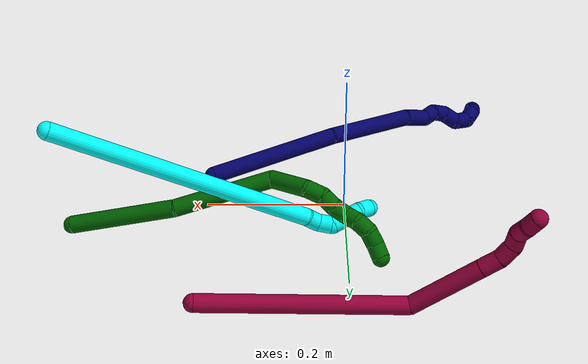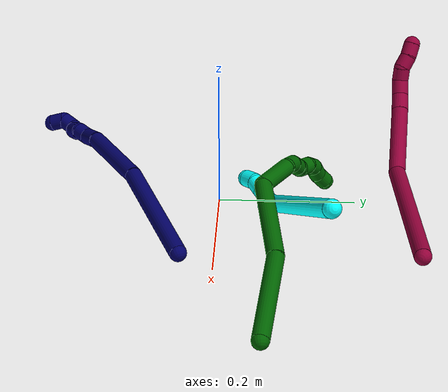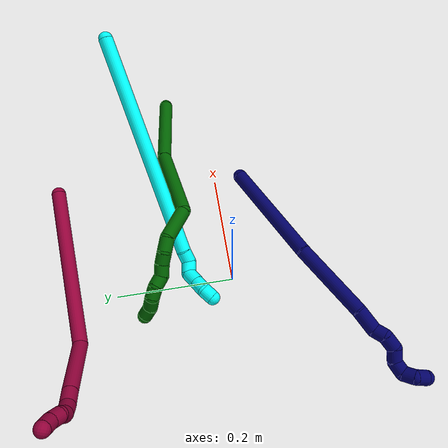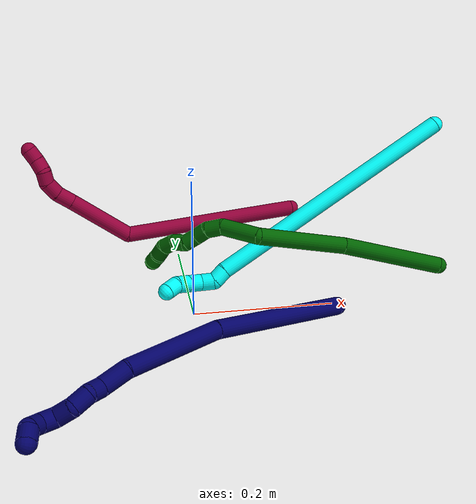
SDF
<sdf version="1.7">
 <world name="default">
  <model name="3">
   <static>0</static>
   <link name="3">
    <collision name="collision-cylinder-e_1_1_4">
     <pose>-0.028551 -0.020709 -0.193059 3.03473 -0.145999 -1.87874</pose>
     <geometry><cylinder><radius>0.0125</radius><length>0.392508</length></cylinder></geometry>
     <surface>
      <friction><ode><mu>1.16</mu><mu2>1.16</mu2><slip1>0</slip1><slip2>0</slip2></ode></friction>
      <contact><ode><kp>1e+06</kp><kd>1</kd><max_vel>0</max_vel><min_depth>0.001</min_depth></ode></contact>
     </surface>
    </collision>
    <visual name="visual-cylinder-e_1_1_4">
     <pose>-0.028551 -0.020709 -0.193059 3.03473 -0.145999 -1.87874</pose>
     <geometry><cylinder><radius>0.0125</radius><length>0.392508</length></cylinder></geometry>
     <material><ambient>0.003922 1 0.996078 1</ambient></material>
    </visual>
    <collision name="collision-cylinder-e_2_4_5">
     <pose>-0.057775 -0.040374 -0.396617 -3.04256 -0.06368 1.1425</pose>
     <geometry><cylinder><radius>0.0125</radius><length>0.021145</length></cylinder></geometry>
     <surface>
      <friction><ode><mu>1.16</mu><mu2>1.16</mu2><slip1>0</slip1><slip2>0</slip2></ode></friction>
      <contact><ode><kp>1e+06</kp><kd>1</kd><max_vel>0</max_vel><min_depth>0.001</min_depth></ode></contact>
     </surface>
    </collision>
    <visual name="visual-cylinder-e_2_4_5">
     <pose>-0.057775 -0.040374 -0.396617 -3.04256 -0.06368 1.1425</pose>
     <geometry><cylinder><radius>0.0125</radius><length>0.021145</length></cylinder></geometry>
     <material><ambient>0.003922 1 0.996078 1</ambient></material>
    </visual>
    <collision name="collision-cylinder-e_3_5_6">
     <pose>-0.06285 -0.044604 -0.415414 2.57541 -0.420955 -1.2669</pose>
     <geometry><cylinder><radius>0.0125</radius><length>0.021543</length></cylinder></geometry>
     <surface>
      <friction><ode><mu>1.16</mu><mu2>1.16</mu2><slip1>0</slip1><slip2>0</slip2></ode></friction>
      <contact><ode><kp>1e+06</kp><kd>1</kd><max_vel>0</max_vel><min_depth>0.001</min_depth></ode></contact>
     </surface>
    </collision>
    <visual name="visual-cylinder-e_3_5_6">
     <pose>-0.06285 -0.044604 -0.415414 2.57541 -0.420955 -1.2669</pose>
     <geometry><cylinder><radius>0.0125</radius><length>0.021543</length></cylinder></geometry>
     <material><ambient>0.003922 1 0.996078 1</ambient></material>
    </visual>
    <collision name="collision-cylinder-e_4_6_7">
     <pose>-0.06355 -0.057524 -0.432239 2.41067 0.312545 0.781191</pose>
     <geometry><cylinder><radius>0.0125</radius><length>0.024074</length></cylinder></geometry>
     <surface>
      <friction><ode><mu>1.16</mu><mu2>1.16</mu2><slip1>0</slip1><slip2>0</slip2></ode></friction>
      <contact><ode><kp>1e+06</kp><kd>1</kd><max_vel>0</max_vel><min_depth>0.001</min_depth></ode></contact>
     </surface>
    </collision>
    <visual name="visual-cylinder-e_4_6_7">
     <pose>-0.06355 -0.057524 -0.432239 2.41067 0.312545 0.781191</pose>
     <geometry><cylinder><radius>0.0125</radius><length>0.024074</length></cylinder></geometry>
     <material><ambient>0.003922 1 0.996078 1</ambient></material>
    </visual>
    <collision name="collision-cylinder-e_5_7_8">
     <pose>-0.056695 -0.071696 -0.448073 2.41257 0.31146 0.780706</pose>
     <geometry><cylinder><radius>0.0125</radius><length>0.020582</length></cylinder></geometry>
     <surface>
      <friction><ode><mu>1.16</mu><mu2>1.16</mu2><slip1>0</slip1><slip2>0</slip2></ode></friction>
      <contact><ode><kp>1e+06</kp><kd>1</kd><max_vel>0</max_vel><min_depth>0.001</min_depth></ode></contact>
     </surface>
    </collision>
    <visual name="visual-cylinder-e_5_7_8">
     <pose>-0.056695 -0.071696 -0.448073 2.41257 0.31146 0.780706</pose>
     <geometry><cylinder><radius>0.0125</radius><length>0.020582</length></cylinder></geometry>
     <material><ambient>0.003922 1 0.996078 1</ambient></material>
    </visual>
    <collision name="collision-cylinder-e_6_8_2">
     <pose>-0.049851 -0.080796 -0.464392 2.86331 0.375064 1.87003</pose>
     <geometry><cylinder><radius>0.0125</radius><length>0.020147</length></cylinder></geometry>
     <surface>
      <friction><ode><mu>1.16</mu><mu2>1.16</mu2><slip1>0</slip1><slip2>0</slip2></ode></friction>
      <contact><ode><kp>1e+06</kp><kd>1</kd><max_vel>0</max_vel><min_depth>0.001</min_depth></ode></contact>
     </surface>
    </collision>
    <visual name="visual-cylinder-e_6_8_2">
     <pose>-0.049851 -0.080796 -0.464392 2.86331 0.375064 1.87003</pose>
     <geometry><cylinder><radius>0.0125</radius><length>0.020147</length></cylinder></geometry>
     <material><ambient>0.003922 1 0.996078 1</ambient></material>
    </visual>
    <collision name="collision-sphere-2">
     <pose>-0.046161 -0.083371 -0.473404 0 -0 0</pose>
     <geometry><sphere><radius>0.0125</radius></sphere></geometry>
     <surface>
      <friction><ode><mu>1.16</mu><mu2>1.16</mu2><slip1>0</slip1><slip2>0</slip2></ode></friction>
      <contact><ode><kp>1e+06</kp><kd>1</kd><max_vel>0</max_vel><min_depth>0.001</min_depth></ode></contact>
     </surface>
    </collision>
    <visual name="visual-sphere-2">
     <pose>-0.046161 -0.083371 -0.473404 0 -0 0</pose>
     <geometry><sphere><radius>0.0125</radius></sphere></geometry>
     <material><ambient>0.003922 1 0.996078 1</ambient></material>
    </visual>
    <collision name="collision-sphere-4">
     <pose>-0.057102 -0.041417 -0.386118 0 -0 0</pose>
     <geometry><sphere><radius>0.0125</radius></sphere></geometry>
     <surface>
      <friction><ode><mu>1.16</mu><mu2>1.16</mu2><slip1>0</slip1><slip2>0</slip2></ode></friction>
      <contact><ode><kp>1e+06</kp><kd>1</kd><max_vel>0</max_vel><min_depth>0.001</min_depth></ode></contact>
     </surface>
    </collision>
    <visual name="visual-sphere-4">
     <pose>-0.057102 -0.041417 -0.386118 0 -0 0</pose>
     <geometry><sphere><radius>0.0125</radius></sphere></geometry>
     <material><ambient>0.003922 1 0.996078 1</ambient></material>
    </visual>
    <collision name="collision-sphere-1">
     <geometry><sphere><radius>0.0125</radius></sphere></geometry>
     <surface>
      <friction><ode><mu>1.16</mu><mu2>1.16</mu2><slip1>0</slip1><slip2>0</slip2></ode></friction>
      <contact><ode><kp>1e+06</kp><kd>1</kd><max_vel>0</max_vel><min_depth>0.001</min_depth></ode></contact>
     </surface>
    </collision>
    <visual name="visual-sphere-1">
     <geometry><sphere><radius>0.0125</radius></sphere></geometry>
     <material><ambient>0.003922 1 0.996078 1</ambient></material>
    </visual>
    <collision name="collision-sphere-8">
     <pose>-0.053541 -0.078221 -0.455379 0 -0 0</pose>
     <geometry><sphere><radius>0.0125</radius></sphere></geometry>
     <surface>
      <friction><ode><mu>1.16</mu><mu2>1.16</mu2><slip1>0</slip1><slip2>0</slip2></ode></friction>
      <contact><ode><kp>1e+06</kp><kd>1</kd><max_vel>0</max_vel><min_depth>0.001</min_depth></ode></contact>
     </surface>
    </collision>
    <visual name="visual-sphere-8">
     <pose>-0.053541 -0.078221 -0.455379 0 -0 0</pose>
     <geometry><sphere><radius>0.0125</radius></sphere></geometry>
     <material><ambient>0.003922 1 0.996078 1</ambient></material>
    </visual>
    <collision name="collision-sphere-5">
     <pose>-0.058448 -0.039331 -0.407117 0 -0 0</pose>
     <geometry><sphere><radius>0.0125</radius></sphere></geometry>
     <surface>
      <friction><ode><mu>1.16</mu><mu2>1.16</mu2><slip1>0</slip1><slip2>0</slip2></ode></friction>
      <contact><ode><kp>1e+06</kp><kd>1</kd><max_vel>0</max_vel><min_depth>0.001</min_depth></ode></contact>
     </surface>
    </collision>
    <visual name="visual-sphere-5">
     <pose>-0.058448 -0.039331 -0.407117 0 -0 0</pose>
     <geometry><sphere><radius>0.0125</radius></sphere></geometry>
     <material><ambient>0.003922 1 0.996078 1</ambient></material>
    </visual>
    <collision name="collision-sphere-6">
     <pose>-0.067251 -0.049878 -0.423711 0 -0 0</pose>
     <geometry><sphere><radius>0.0125</radius></sphere></geometry>
     <surface>
      <friction><ode><mu>1.16</mu><mu2>1.16</mu2><slip1>0</slip1><slip2>0</slip2></ode></friction>
      <contact><ode><kp>1e+06</kp><kd>1</kd><max_vel>0</max_vel><min_depth>0.001</min_depth></ode></contact>
     </surface>
    </collision>
    <visual name="visual-sphere-6">
     <pose>-0.067251 -0.049878 -0.423711 0 -0 0</pose>
     <geometry><sphere><radius>0.0125</radius></sphere></geometry>
     <material><ambient>0.003922 1 0.996078 1</ambient></material>
    </visual>
    <collision name="collision-sphere-7">
     <pose>-0.059849 -0.06517 -0.440767 0 -0 0</pose>
     <geometry><sphere><radius>0.0125</radius></sphere></geometry>
     <surface>
      <friction><ode><mu>1.16</mu><mu2>1.16</mu2><slip1>0</slip1><slip2>0</slip2></ode></friction>
      <contact><ode><kp>1e+06</kp><kd>1</kd><max_vel>0</max_vel><min_depth>0.001</min_depth></ode></contact>
     </surface>
    </collision>
    <visual name="visual-sphere-7">
     <pose>-0.059849 -0.06517 -0.440767 0 -0 0</pose>
     <geometry><sphere><radius>0.0125</radius></sphere></geometry>
     <material><ambient>0.003922 1 0.996078 1</ambient></material>
    </visual>
    <inertial>
     <pose>-0.034967 -0.028862 -0.244194 0 -0 0</pose>
     <mass>0.5</mass>
     <inertia>
      <ixx>-0.006278</ixx>
      <ixy>0</ixy>
      <ixz>0</ixz>
      <iyy>-0.003172</iyy>
      <iyz>0</iyz>
      <izz>0.001234</izz>
     </inertia>
    </inertial>
   </link>
   <pose>0.393664 0.15699 0.209743 -1.00072 -0.277897 -1.31661</pose>
  </model>
  <model name="6">
   <static>0</static>
   <link name="6">
    <collision name="collision-cylinder-e_1_1_4">
     <pose>-0.028706 -0.001842 -0.071036 3.11566 -0.383922 -3.00837</pose>
     <geometry><cylinder><radius>0.0125</radius><length>0.153279</length></cylinder></geometry>
     <surface>
      <friction><ode><mu>1.16</mu><mu2>1.16</mu2><slip1>0</slip1><slip2>0</slip2></ode></friction>
      <contact><ode><kp>1e+06</kp><kd>1</kd><max_vel>0</max_vel><min_depth>0.001</min_depth></ode></contact>
     </surface>
    </collision>
    <visual name="visual-cylinder-e_1_1_4">
     <pose>-0.028706 -0.001842 -0.071036 3.11566 -0.383922 -3.00837</pose>
     <geometry><cylinder><radius>0.0125</radius><length>0.153279</length></cylinder></geometry>
     <material><ambient>0 0.392157 0.003922 1</ambient></material>
    </visual>
    <collision name="collision-cylinder-e_2_4_5">
     <pose>-0.073755 0.00904 -0.210033 -2.9565 -0.232108 1.79682</pose>
     <geometry><cylinder><radius>0.0125</radius><length>0.142093</length></cylinder></geometry>
     <surface>
      <friction><ode><mu>1.16</mu><mu2>1.16</mu2><slip1>0</slip1><slip2>0</slip2></ode></friction>
      <contact><ode><kp>1e+06</kp><kd>1</kd><max_vel>0</max_vel><min_depth>0.001</min_depth></ode></contact>
     </surface>
    </collision>
    <visual name="visual-cylinder-e_2_4_5">
     <pose>-0.073755 0.00904 -0.210033 -2.9565 -0.232108 1.79682</pose>
     <geometry><cylinder><radius>0.0125</radius><length>0.142093</length></cylinder></geometry>
     <material><ambient>0 0.392157 0.003922 1</ambient></material>
    </visual>
    <collision name="collision-cylinder-e_3_5_6">
     <pose>-0.109728 0.012153 -0.297147 2.6765 -0.741579 -2.04732</pose>
     <geometry><cylinder><radius>0.0125</radius><length>0.058125</length></cylinder></geometry>
     <surface>
      <friction><ode><mu>1.16</mu><mu2>1.16</mu2><slip1>0</slip1><slip2>0</slip2></ode></friction>
      <contact><ode><kp>1e+06</kp><kd>1</kd><max_vel>0</max_vel><min_depth>0.001</min_depth></ode></contact>
     </surface>
    </collision>
    <visual name="visual-cylinder-e_3_5_6">
     <pose>-0.109728 0.012153 -0.297147 2.6765 -0.741579 -2.04732</pose>
     <geometry><cylinder><radius>0.0125</radius><length>0.058125</length></cylinder></geometry>
     <material><ambient>0 0.392157 0.003922 1</ambient></material>
    </visual>
    <collision name="collision-cylinder-e_4_6_7">
     <pose>-0.139502 0.003216 -0.323389 -3.04673 -0.958818 2.95947</pose>
     <geometry><cylinder><radius>0.0125</radius><length>0.024787</length></cylinder></geometry>
     <surface>
      <friction><ode><mu>1.16</mu><mu2>1.16</mu2><slip1>0</slip1><slip2>0</slip2></ode></friction>
      <contact><ode><kp>1e+06</kp><kd>1</kd><max_vel>0</max_vel><min_depth>0.001</min_depth></ode></contact>
     </surface>
    </collision>
    <visual name="visual-cylinder-e_4_6_7">
     <pose>-0.139502 0.003216 -0.323389 -3.04673 -0.958818 2.95947</pose>
     <geometry><cylinder><radius>0.0125</radius><length>0.024787</length></cylinder></geometry>
     <material><ambient>0 0.392157 0.003922 1</ambient></material>
    </visual>
    <collision name="collision-cylinder-e_5_7_8">
     <pose>-0.15915 0.005942 -0.332844 -2.42722 -1.25242 2.18896</pose>
     <geometry><cylinder><radius>0.0125</radius><length>0.020012</length></cylinder></geometry>
     <surface>
      <friction><ode><mu>1.16</mu><mu2>1.16</mu2><slip1>0</slip1><slip2>0</slip2></ode></friction>
      <contact><ode><kp>1e+06</kp><kd>1</kd><max_vel>0</max_vel><min_depth>0.001</min_depth></ode></contact>
     </surface>
    </collision>
    <visual name="visual-cylinder-e_5_7_8">
     <pose>-0.15915 0.005942 -0.332844 -2.42722 -1.25242 2.18896</pose>
     <geometry><cylinder><radius>0.0125</radius><length>0.020012</length></cylinder></geometry>
     <material><ambient>0 0.392157 0.003922 1</ambient></material>
    </visual>
    <collision name="collision-cylinder-e_6_8_9">
     <pose>-0.1777 0.011263 -0.339131 -2.44675 -1.05705 2.03144</pose>
     <geometry><cylinder><radius>0.0125</radius><length>0.020776</length></cylinder></geometry>
     <surface>
      <friction><ode><mu>1.16</mu><mu2>1.16</mu2><slip1>0</slip1><slip2>0</slip2></ode></friction>
      <contact><ode><kp>1e+06</kp><kd>1</kd><max_vel>0</max_vel><min_depth>0.001</min_depth></ode></contact>
     </surface>
    </collision>
    <visual name="visual-cylinder-e_6_8_9">
     <pose>-0.1777 0.011263 -0.339131 -2.44675 -1.05705 2.03144</pose>
     <geometry><cylinder><radius>0.0125</radius><length>0.020776</length></cylinder></geometry>
     <material><ambient>0 0.392157 0.003922 1</ambient></material>
    </visual>
    <collision name="collision-cylinder-e_7_9_10">
     <pose>-0.195029 0.011886 -0.348156 2.6634 -0.964139 -2.26967</pose>
     <geometry><cylinder><radius>0.0125</radius><length>0.020163</length></cylinder></geometry>
     <surface>
      <friction><ode><mu>1.16</mu><mu2>1.16</mu2><slip1>0</slip1><slip2>0</slip2></ode></friction>
      <contact><ode><kp>1e+06</kp><kd>1</kd><max_vel>0</max_vel><min_depth>0.001</min_depth></ode></contact>
     </surface>
    </collision>
    <visual name="visual-cylinder-e_7_9_10">
     <pose>-0.195029 0.011886 -0.348156 2.6634 -0.964139 -2.26967</pose>
     <geometry><cylinder><radius>0.0125</radius><length>0.020163</length></cylinder></geometry>
     <material><ambient>0 0.392157 0.003922 1</ambient></material>
    </visual>
    <collision name="collision-cylinder-e_8_10_11">
     <pose>-0.212957 0.010175 -0.35625 -2.83906 -1.25665 2.728</pose>
     <geometry><cylinder><radius>0.0125</radius><length>0.020283</length></cylinder></geometry>
     <surface>
      <friction><ode><mu>1.16</mu><mu2>1.16</mu2><slip1>0</slip1><slip2>0</slip2></ode></friction>
      <contact><ode><kp>1e+06</kp><kd>1</kd><max_vel>0</max_vel><min_depth>0.001</min_depth></ode></contact>
     </surface>
    </collision>
    <visual name="visual-cylinder-e_8_10_11">
     <pose>-0.212957 0.010175 -0.35625 -2.83906 -1.25665 2.728</pose>
     <geometry><cylinder><radius>0.0125</radius><length>0.020283</length></cylinder></geometry>
     <material><ambient>0 0.392157 0.003922 1</ambient></material>
    </visual>
    <collision name="collision-cylinder-e_9_11_12">
     <pose>-0.232197 0.014218 -0.358353 -1.29247 -1.2457 0.992965</pose>
     <geometry><cylinder><radius>0.0125</radius><length>0.020249</length></cylinder></geometry>
     <surface>
      <friction><ode><mu>1.16</mu><mu2>1.16</mu2><slip1>0</slip1><slip2>0</slip2></ode></friction>
      <contact><ode><kp>1e+06</kp><kd>1</kd><max_vel>0</max_vel><min_depth>0.001</min_depth></ode></contact>
     </surface>
    </collision>
    <visual name="visual-cylinder-e_9_11_12">
     <pose>-0.232197 0.014218 -0.358353 -1.29247 -1.2457 0.992965</pose>
     <geometry><cylinder><radius>0.0125</radius><length>0.020249</length></cylinder></geometry>
     <material><ambient>0 0.392157 0.003922 1</ambient></material>
    </visual>
    <collision name="collision-cylinder-e_10_12_2">
     <pose>-0.251802 0.01748 -0.356016 -0.10464 -1.42625 0.090532</pose>
     <geometry><cylinder><radius>0.0125</radius><length>0.020234</length></cylinder></geometry>
     <surface>
      <friction><ode><mu>1.16</mu><mu2>1.16</mu2><slip1>0</slip1><slip2>0</slip2></ode></friction>
      <contact><ode><kp>1e+06</kp><kd>1</kd><max_vel>0</max_vel><min_depth>0.001</min_depth></ode></contact>
     </surface>
    </collision>
    <visual name="visual-cylinder-e_10_12_2">
     <pose>-0.251802 0.01748 -0.356016 -0.10464 -1.42625 0.090532</pose>
     <geometry><cylinder><radius>0.0125</radius><length>0.020234</length></cylinder></geometry>
     <material><ambient>0 0.392157 0.003922 1</ambient></material>
    </visual>
    <collision name="collision-sphere-2">
     <pose>-0.261814 0.017632 -0.354566 0 -0 0</pose>
     <geometry><sphere><radius>0.0125</radius></sphere></geometry>
     <surface>
      <friction><ode><mu>1.16</mu><mu2>1.16</mu2><slip1>0</slip1><slip2>0</slip2></ode></friction>
      <contact><ode><kp>1e+06</kp><kd>1</kd><max_vel>0</max_vel><min_depth>0.001</min_depth></ode></contact>
     </surface>
    </collision>
    <visual name="visual-sphere-2">
     <pose>-0.261814 0.017632 -0.354566 0 -0 0</pose>
     <geometry><sphere><radius>0.0125</radius></sphere></geometry>
     <material><ambient>0 0.392157 0.003922 1</ambient></material>
    </visual>
    <collision name="collision-sphere-12">
     <pose>-0.241791 0.017327 -0.357465 0 -0 0</pose>
     <geometry><sphere><radius>0.0125</radius></sphere></geometry>
     <surface>
      <friction><ode><mu>1.16</mu><mu2>1.16</mu2><slip1>0</slip1><slip2>0</slip2></ode></friction>
      <contact><ode><kp>1e+06</kp><kd>1</kd><max_vel>0</max_vel><min_depth>0.001</min_depth></ode></contact>
     </surface>
    </collision>
    <visual name="visual-sphere-12">
     <pose>-0.241791 0.017327 -0.357465 0 -0 0</pose>
     <geometry><sphere><radius>0.0125</radius></sphere></geometry>
     <material><ambient>0 0.392157 0.003922 1</ambient></material>
    </visual>
    <collision name="collision-sphere-11">
     <pose>-0.222602 0.011109 -0.359242 0 -0 0</pose>
     <geometry><sphere><radius>0.0125</radius></sphere></geometry>
     <surface>
      <friction><ode><mu>1.16</mu><mu2>1.16</mu2><slip1>0</slip1><slip2>0</slip2></ode></friction>
      <contact><ode><kp>1e+06</kp><kd>1</kd><max_vel>0</max_vel><min_depth>0.001</min_depth></ode></contact>
     </surface>
    </collision>
    <visual name="visual-sphere-11">
     <pose>-0.222602 0.011109 -0.359242 0 -0 0</pose>
     <geometry><sphere><radius>0.0125</radius></sphere></geometry>
     <material><ambient>0 0.392157 0.003922 1</ambient></material>
    </visual>
    <collision name="collision-sphere-10">
     <pose>-0.203312 0.009242 -0.353259 0 -0 0</pose>
     <geometry><sphere><radius>0.0125</radius></sphere></geometry>
     <surface>
      <friction><ode><mu>1.16</mu><mu2>1.16</mu2><slip1>0</slip1><slip2>0</slip2></ode></friction>
      <contact><ode><kp>1e+06</kp><kd>1</kd><max_vel>0</max_vel><min_depth>0.001</min_depth></ode></contact>
     </surface>
    </collision>
    <visual name="visual-sphere-10">
     <pose>-0.203312 0.009242 -0.353259 0 -0 0</pose>
     <geometry><sphere><radius>0.0125</radius></sphere></geometry>
     <material><ambient>0 0.392157 0.003922 1</ambient></material>
    </visual>
    <collision name="collision-sphere-9">
     <pose>-0.186747 0.014531 -0.343053 0 -0 0</pose>
     <geometry><sphere><radius>0.0125</radius></sphere></geometry>
     <surface>
      <friction><ode><mu>1.16</mu><mu2>1.16</mu2><slip1>0</slip1><slip2>0</slip2></ode></friction>
      <contact><ode><kp>1e+06</kp><kd>1</kd><max_vel>0</max_vel><min_depth>0.001</min_depth></ode></contact>
     </surface>
    </collision>
    <visual name="visual-sphere-9">
     <pose>-0.186747 0.014531 -0.343053 0 -0 0</pose>
     <geometry><sphere><radius>0.0125</radius></sphere></geometry>
     <material><ambient>0 0.392157 0.003922 1</ambient></material>
    </visual>
    <collision name="collision-sphere-4">
     <pose>-0.057412 -0.003685 -0.142072 0 -0 0</pose>
     <geometry><sphere><radius>0.0125</radius></sphere></geometry>
     <surface>
      <friction><ode><mu>1.16</mu><mu2>1.16</mu2><slip1>0</slip1><slip2>0</slip2></ode></friction>
      <contact><ode><kp>1e+06</kp><kd>1</kd><max_vel>0</max_vel><min_depth>0.001</min_depth></ode></contact>
     </surface>
    </collision>
    <visual name="visual-sphere-4">
     <pose>-0.057412 -0.003685 -0.142072 0 -0 0</pose>
     <geometry><sphere><radius>0.0125</radius></sphere></geometry>
     <material><ambient>0 0.392157 0.003922 1</ambient></material>
    </visual>
    <collision name="collision-sphere-1">
     <geometry><sphere><radius>0.0125</radius></sphere></geometry>
     <surface>
      <friction><ode><mu>1.16</mu><mu2>1.16</mu2><slip1>0</slip1><slip2>0</slip2></ode></friction>
      <contact><ode><kp>1e+06</kp><kd>1</kd><max_vel>0</max_vel><min_depth>0.001</min_depth></ode></contact>
     </surface>
    </collision>
    <visual name="visual-sphere-1">
     <geometry><sphere><radius>0.0125</radius></sphere></geometry>
     <material><ambient>0 0.392157 0.003922 1</ambient></material>
    </visual>
    <collision name="collision-sphere-8">
     <pose>-0.168653 0.007994 -0.33521 0 -0 0</pose>
     <geometry><sphere><radius>0.0125</radius></sphere></geometry>
     <surface>
      <friction><ode><mu>1.16</mu><mu2>1.16</mu2><slip1>0</slip1><slip2>0</slip2></ode></friction>
      <contact><ode><kp>1e+06</kp><kd>1</kd><max_vel>0</max_vel><min_depth>0.001</min_depth></ode></contact>
     </surface>
    </collision>
    <visual name="visual-sphere-8">
     <pose>-0.168653 0.007994 -0.33521 0 -0 0</pose>
     <geometry><sphere><radius>0.0125</radius></sphere></geometry>
     <material><ambient>0 0.392157 0.003922 1</ambient></material>
    </visual>
    <collision name="collision-sphere-5">
     <pose>-0.090097 0.021765 -0.277993 0 -0 0</pose>
     <geometry><sphere><radius>0.0125</radius></sphere></geometry>
     <surface>
      <friction><ode><mu>1.16</mu><mu2>1.16</mu2><slip1>0</slip1><slip2>0</slip2></ode></friction>
      <contact><ode><kp>1e+06</kp><kd>1</kd><max_vel>0</max_vel><min_depth>0.001</min_depth></ode></contact>
     </surface>
    </collision>
    <visual name="visual-sphere-5">
     <pose>-0.090097 0.021765 -0.277993 0 -0 0</pose>
     <geometry><sphere><radius>0.0125</radius></sphere></geometry>
     <material><ambient>0 0.392157 0.003922 1</ambient></material>
    </visual>
    <collision name="collision-sphere-6">
     <pose>-0.129358 0.002541 -0.316302 0 -0 0</pose>
     <geometry><sphere><radius>0.0125</radius></sphere></geometry>
     <surface>
      <friction><ode><mu>1.16</mu><mu2>1.16</mu2><slip1>0</slip1><slip2>0</slip2></ode></friction>
      <contact><ode><kp>1e+06</kp><kd>1</kd><max_vel>0</max_vel><min_depth>0.001</min_depth></ode></contact>
     </surface>
    </collision>
    <visual name="visual-sphere-6">
     <pose>-0.129358 0.002541 -0.316302 0 -0 0</pose>
     <geometry><sphere><radius>0.0125</radius></sphere></geometry>
     <material><ambient>0 0.392157 0.003922 1</ambient></material>
    </visual>
    <collision name="collision-sphere-7">
     <pose>-0.149646 0.00389 -0.330477 0 -0 0</pose>
     <geometry><sphere><radius>0.0125</radius></sphere></geometry>
     <surface>
      <friction><ode><mu>1.16</mu><mu2>1.16</mu2><slip1>0</slip1><slip2>0</slip2></ode></friction>
      <contact><ode><kp>1e+06</kp><kd>1</kd><max_vel>0</max_vel><min_depth>0.001</min_depth></ode></contact>
     </surface>
    </collision>
    <visual name="visual-sphere-7">
     <pose>-0.149646 0.00389 -0.330477 0 -0 0</pose>
     <geometry><sphere><radius>0.0125</radius></sphere></geometry>
     <material><ambient>0 0.392157 0.003922 1</ambient></material>
    </visual>
    <inertial>
     <pose>-0.099282 0.006458 -0.216864 0 -0 0</pose>
     <mass>0.5</mass>
     <inertia>
      <ixx>-0.00018</ixx>
      <ixy>0</ixy>
      <ixz>0</ixz>
      <iyy>0.000576</iyy>
      <iyz>0</iyz>
      <izz>0.000134</izz>
     </inertia>
    </inertial>
   </link>
   <pose>0.388466 0.071679 0.011496 -2.33659 -0.727323 -0.845072</pose>
  </model>
  <model name="7">
   <static>0</static>
   <link name="7">
    <collision name="collision-cylinder-e_1_1_4">
     <pose>-0.034455 -0.012381 0.091553 0.134422 -0.356962 -0.024285</pose>
     <geometry><cylinder><radius>0.0125</radius><length>0.197205</length></cylinder></geometry>
     <surface>
      <friction><ode><mu>1.16</mu><mu2>1.16</mu2><slip1>0</slip1><slip2>0</slip2></ode></friction>
      <contact><ode><kp>1e+06</kp><kd>1</kd><max_vel>0</max_vel><min_depth>0.001</min_depth></ode></contact>
     </surface>
    </collision>
    <visual name="visual-cylinder-e_1_1_4">
     <pose>-0.034455 -0.012381 0.091553 0.134422 -0.356962 -0.024285</pose>
     <geometry><cylinder><radius>0.0125</radius><length>0.197205</length></cylinder></geometry>
     <material><ambient>0.003922 0 0.403922 1</ambient></material>
    </visual>
    <collision name="collision-cylinder-e_2_4_5">
     <pose>-0.097725 -0.043594 0.241423 0.312346 -0.439545 -0.070316</pose>
     <geometry><cylinder><radius>0.0125</radius><length>0.135437</length></cylinder></geometry>
     <surface>
      <friction><ode><mu>1.16</mu><mu2>1.16</mu2><slip1>0</slip1><slip2>0</slip2></ode></friction>
      <contact><ode><kp>1e+06</kp><kd>1</kd><max_vel>0</max_vel><min_depth>0.001</min_depth></ode></contact>
     </surface>
    </collision>
    <visual name="visual-cylinder-e_2_4_5">
     <pose>-0.097725 -0.043594 0.241423 0.312346 -0.439545 -0.070316</pose>
     <geometry><cylinder><radius>0.0125</radius><length>0.135437</length></cylinder></geometry>
     <material><ambient>0.003922 0 0.403922 1</ambient></material>
    </visual>
    <collision name="collision-cylinder-e_3_5_6">
     <pose>-0.138349 -0.06927 0.313541 0.460377 -0.653977 -0.158627</pose>
     <geometry><cylinder><radius>0.0125</radius><length>0.03882</length></cylinder></geometry>
     <surface>
      <friction><ode><mu>1.16</mu><mu2>1.16</mu2><slip1>0</slip1><slip2>0</slip2></ode></friction>
      <contact><ode><kp>1e+06</kp><kd>1</kd><max_vel>0</max_vel><min_depth>0.001</min_depth></ode></contact>
     </surface>
    </collision>
    <visual name="visual-cylinder-e_3_5_6">
     <pose>-0.138349 -0.06927 0.313541 0.460377 -0.653977 -0.158627</pose>
     <geometry><cylinder><radius>0.0125</radius><length>0.03882</length></cylinder></geometry>
     <material><ambient>0.003922 0 0.403922 1</ambient></material>
    </visual>
    <collision name="collision-cylinder-e_4_6_7">
     <pose>-0.151843 -0.080786 0.336261 0.482505 -0.16589 -0.040904</pose>
     <geometry><cylinder><radius>0.0125</radius><length>0.020417</length></cylinder></geometry>
     <surface>
      <friction><ode><mu>1.16</mu><mu2>1.16</mu2><slip1>0</slip1><slip2>0</slip2></ode></friction>
      <contact><ode><kp>1e+06</kp><kd>1</kd><max_vel>0</max_vel><min_depth>0.001</min_depth></ode></contact>
     </surface>
    </collision>
    <visual name="visual-cylinder-e_4_6_7">
     <pose>-0.151843 -0.080786 0.336261 0.482505 -0.16589 -0.040904</pose>
     <geometry><cylinder><radius>0.0125</radius><length>0.020417</length></cylinder></geometry>
     <material><ambient>0.003922 0 0.403922 1</ambient></material>
    </visual>
    <collision name="collision-cylinder-e_5_7_8">
     <pose>-0.161345 -0.090262 0.352737 0.566288 -0.717591 -0.217378</pose>
     <geometry><cylinder><radius>0.0125</radius><length>0.023774</length></cylinder></geometry>
     <surface>
      <friction><ode><mu>1.16</mu><mu2>1.16</mu2><slip1>0</slip1><slip2>0</slip2></ode></friction>
      <contact><ode><kp>1e+06</kp><kd>1</kd><max_vel>0</max_vel><min_depth>0.001</min_depth></ode></contact>
     </surface>
    </collision>
    <visual name="visual-cylinder-e_5_7_8">
     <pose>-0.161345 -0.090262 0.352737 0.566288 -0.717591 -0.217378</pose>
     <geometry><cylinder><radius>0.0125</radius><length>0.023774</length></cylinder></geometry>
     <material><ambient>0.003922 0 0.403922 1</ambient></material>
    </visual>
    <collision name="collision-cylinder-e_6_8_9">
     <pose>-0.17999 -0.094361 0.364594 -0.162552 -1.18824 0.109942</pose>
     <geometry><cylinder><radius>0.0125</radius><length>0.023344</length></cylinder></geometry>
     <surface>
      <friction><ode><mu>1.16</mu><mu2>1.16</mu2><slip1>0</slip1><slip2>0</slip2></ode></friction>
      <contact><ode><kp>1e+06</kp><kd>1</kd><max_vel>0</max_vel><min_depth>0.001</min_depth></ode></contact>
     </surface>
    </collision>
    <visual name="visual-cylinder-e_6_8_9">
     <pose>-0.17999 -0.094361 0.364594 -0.162552 -1.18824 0.109942</pose>
     <geometry><cylinder><radius>0.0125</radius><length>0.023344</length></cylinder></geometry>
     <material><ambient>0.003922 0 0.403922 1</ambient></material>
    </visual>
    <collision name="collision-cylinder-e_7_9_10">
     <pose>-0.196108 -0.095499 0.377665 0.207113 -0.533237 -0.056755</pose>
     <geometry><cylinder><radius>0.0125</radius><length>0.020815</length></cylinder></geometry>
     <surface>
      <friction><ode><mu>1.16</mu><mu2>1.16</mu2><slip1>0</slip1><slip2>0</slip2></ode></friction>
      <contact><ode><kp>1e+06</kp><kd>1</kd><max_vel>0</max_vel><min_depth>0.001</min_depth></ode></contact>
     </surface>
    </collision>
    <visual name="visual-cylinder-e_7_9_10">
     <pose>-0.196108 -0.095499 0.377665 0.207113 -0.533237 -0.056755</pose>
     <geometry><cylinder><radius>0.0125</radius><length>0.020815</length></cylinder></geometry>
     <material><ambient>0.003922 0 0.403922 1</ambient></material>
    </visual>
    <collision name="collision-cylinder-e_8_10_11">
     <pose>-0.200226 -0.102326 0.395135 0.520208 0.116448 0.031023</pose>
     <geometry><cylinder><radius>0.0125</radius><length>0.020189</length></cylinder></geometry>
     <surface>
      <friction><ode><mu>1.16</mu><mu2>1.16</mu2><slip1>0</slip1><slip2>0</slip2></ode></friction>
      <contact><ode><kp>1e+06</kp><kd>1</kd><max_vel>0</max_vel><min_depth>0.001</min_depth></ode></contact>
     </surface>
    </collision>
    <visual name="visual-cylinder-e_8_10_11">
     <pose>-0.200226 -0.102326 0.395135 0.520208 0.116448 0.031023</pose>
     <geometry><cylinder><radius>0.0125</radius><length>0.020189</length></cylinder></geometry>
     <material><ambient>0.003922 0 0.403922 1</ambient></material>
    </visual>
    <collision name="collision-cylinder-e_9_11_2">
     <pose>-0.20049 -0.116738 0.406841 1.26216 -0.144242 -0.105493</pose>
     <geometry><cylinder><radius>0.0125</radius><length>0.020001</length></cylinder></geometry>
     <surface>
      <friction><ode><mu>1.16</mu><mu2>1.16</mu2><slip1>0</slip1><slip2>0</slip2></ode></friction>
      <contact><ode><kp>1e+06</kp><kd>1</kd><max_vel>0</max_vel><min_depth>0.001</min_depth></ode></contact>
     </surface>
    </collision>
    <visual name="visual-cylinder-e_9_11_2">
     <pose>-0.20049 -0.116738 0.406841 1.26216 -0.144242 -0.105493</pose>
     <geometry><cylinder><radius>0.0125</radius><length>0.020001</length></cylinder></geometry>
     <material><ambient>0.003922 0 0.403922 1</ambient></material>
    </visual>
    <collision name="collision-sphere-2">
     <pose>-0.201928 -0.126167 0.409847 0 -0 0</pose>
     <geometry><sphere><radius>0.0125</radius></sphere></geometry>
     <surface>
      <friction><ode><mu>1.16</mu><mu2>1.16</mu2><slip1>0</slip1><slip2>0</slip2></ode></friction>
      <contact><ode><kp>1e+06</kp><kd>1</kd><max_vel>0</max_vel><min_depth>0.001</min_depth></ode></contact>
     </surface>
    </collision>
    <visual name="visual-sphere-2">
     <pose>-0.201928 -0.126167 0.409847 0 -0 0</pose>
     <geometry><sphere><radius>0.0125</radius></sphere></geometry>
     <material><ambient>0.003922 0 0.403922 1</ambient></material>
    </visual>
    <collision name="collision-sphere-11">
     <pose>-0.199053 -0.107309 0.403835 0 -0 0</pose>
     <geometry><sphere><radius>0.0125</radius></sphere></geometry>
     <surface>
      <friction><ode><mu>1.16</mu><mu2>1.16</mu2><slip1>0</slip1><slip2>0</slip2></ode></friction>
      <contact><ode><kp>1e+06</kp><kd>1</kd><max_vel>0</max_vel><min_depth>0.001</min_depth></ode></contact>
     </surface>
    </collision>
    <visual name="visual-sphere-11">
     <pose>-0.199053 -0.107309 0.403835 0 -0 0</pose>
     <geometry><sphere><radius>0.0125</radius></sphere></geometry>
     <material><ambient>0.003922 0 0.403922 1</ambient></material>
    </visual>
    <collision name="collision-sphere-10">
     <pose>-0.201399 -0.097342 0.386436 0 -0 0</pose>
     <geometry><sphere><radius>0.0125</radius></sphere></geometry>
     <surface>
      <friction><ode><mu>1.16</mu><mu2>1.16</mu2><slip1>0</slip1><slip2>0</slip2></ode></friction>
      <contact><ode><kp>1e+06</kp><kd>1</kd><max_vel>0</max_vel><min_depth>0.001</min_depth></ode></contact>
     </surface>
    </collision>
    <visual name="visual-sphere-10">
     <pose>-0.201399 -0.097342 0.386436 0 -0 0</pose>
     <geometry><sphere><radius>0.0125</radius></sphere></geometry>
     <material><ambient>0.003922 0 0.403922 1</ambient></material>
    </visual>
    <collision name="collision-sphere-9">
     <pose>-0.190818 -0.093656 0.368894 0 -0 0</pose>
     <geometry><sphere><radius>0.0125</radius></sphere></geometry>
     <surface>
      <friction><ode><mu>1.16</mu><mu2>1.16</mu2><slip1>0</slip1><slip2>0</slip2></ode></friction>
      <contact><ode><kp>1e+06</kp><kd>1</kd><max_vel>0</max_vel><min_depth>0.001</min_depth></ode></contact>
     </surface>
    </collision>
    <visual name="visual-sphere-9">
     <pose>-0.190818 -0.093656 0.368894 0 -0 0</pose>
     <geometry><sphere><radius>0.0125</radius></sphere></geometry>
     <material><ambient>0.003922 0 0.403922 1</ambient></material>
    </visual>
    <collision name="collision-sphere-4">
     <pose>-0.068909 -0.024763 0.183107 0 -0 0</pose>
     <geometry><sphere><radius>0.0125</radius></sphere></geometry>
     <surface>
      <friction><ode><mu>1.16</mu><mu2>1.16</mu2><slip1>0</slip1><slip2>0</slip2></ode></friction>
      <contact><ode><kp>1e+06</kp><kd>1</kd><max_vel>0</max_vel><min_depth>0.001</min_depth></ode></contact>
     </surface>
    </collision>
    <visual name="visual-sphere-4">
     <pose>-0.068909 -0.024763 0.183107 0 -0 0</pose>
     <geometry><sphere><radius>0.0125</radius></sphere></geometry>
     <material><ambient>0.003922 0 0.403922 1</ambient></material>
    </visual>
    <collision name="collision-sphere-1">
     <geometry><sphere><radius>0.0125</radius></sphere></geometry>
     <surface>
      <friction><ode><mu>1.16</mu><mu2>1.16</mu2><slip1>0</slip1><slip2>0</slip2></ode></friction>
      <contact><ode><kp>1e+06</kp><kd>1</kd><max_vel>0</max_vel><min_depth>0.001</min_depth></ode></contact>
     </surface>
    </collision>
    <visual name="visual-sphere-1">
     <geometry><sphere><radius>0.0125</radius></sphere></geometry>
     <material><ambient>0.003922 0 0.403922 1</ambient></material>
    </visual>
    <collision name="collision-sphere-8">
     <pose>-0.169161 -0.095066 0.360294 0 -0 0</pose>
     <geometry><sphere><radius>0.0125</radius></sphere></geometry>
     <surface>
      <friction><ode><mu>1.16</mu><mu2>1.16</mu2><slip1>0</slip1><slip2>0</slip2></ode></friction>
      <contact><ode><kp>1e+06</kp><kd>1</kd><max_vel>0</max_vel><min_depth>0.001</min_depth></ode></contact>
     </surface>
    </collision>
    <visual name="visual-sphere-8">
     <pose>-0.169161 -0.095066 0.360294 0 -0 0</pose>
     <geometry><sphere><radius>0.0125</radius></sphere></geometry>
     <material><ambient>0.003922 0 0.403922 1</ambient></material>
    </visual>
    <collision name="collision-sphere-5">
     <pose>-0.126541 -0.062425 0.29974 0 -0 0</pose>
     <geometry><sphere><radius>0.0125</radius></sphere></geometry>
     <surface>
      <friction><ode><mu>1.16</mu><mu2>1.16</mu2><slip1>0</slip1><slip2>0</slip2></ode></friction>
      <contact><ode><kp>1e+06</kp><kd>1</kd><max_vel>0</max_vel><min_depth>0.001</min_depth></ode></contact>
     </surface>
    </collision>
    <visual name="visual-sphere-5">
     <pose>-0.126541 -0.062425 0.29974 0 -0 0</pose>
     <geometry><sphere><radius>0.0125</radius></sphere></geometry>
     <material><ambient>0.003922 0 0.403922 1</ambient></material>
    </visual>
    <collision name="collision-sphere-6">
     <pose>-0.150157 -0.076114 0.327342 0 -0 0</pose>
     <geometry><sphere><radius>0.0125</radius></sphere></geometry>
     <surface>
      <friction><ode><mu>1.16</mu><mu2>1.16</mu2><slip1>0</slip1><slip2>0</slip2></ode></friction>
      <contact><ode><kp>1e+06</kp><kd>1</kd><max_vel>0</max_vel><min_depth>0.001</min_depth></ode></contact>
     </surface>
    </collision>
    <visual name="visual-sphere-6">
     <pose>-0.150157 -0.076114 0.327342 0 -0 0</pose>
     <geometry><sphere><radius>0.0125</radius></sphere></geometry>
     <material><ambient>0.003922 0 0.403922 1</ambient></material>
    </visual>
    <collision name="collision-sphere-7">
     <pose>-0.153529 -0.085457 0.34518 0 -0 0</pose>
     <geometry><sphere><radius>0.0125</radius></sphere></geometry>
     <surface>
      <friction><ode><mu>1.16</mu><mu2>1.16</mu2><slip1>0</slip1><slip2>0</slip2></ode></friction>
      <contact><ode><kp>1e+06</kp><kd>1</kd><max_vel>0</max_vel><min_depth>0.001</min_depth></ode></contact>
     </surface>
    </collision>
    <visual name="visual-sphere-7">
     <pose>-0.153529 -0.085457 0.34518 0 -0 0</pose>
     <geometry><sphere><radius>0.0125</radius></sphere></geometry>
     <material><ambient>0.003922 0 0.403922 1</ambient></material>
    </visual>
    <inertial>
     <pose>-0.097345 -0.046843 0.221323 0 -0 0</pose>
     <mass>0.5</mass>
     <inertia>
      <ixx>0.000765</ixx>
      <ixy>0</ixy>
      <ixz>0</ixz>
      <iyy>0.00082</iyy>
      <iyz>0</iyz>
      <izz>0.000503</izz>
     </inertia>
    </inertial>
   </link>
   <pose>0.193562 -0.047501 0.022319 0.641226 -0.92895 -0.31146</pose>
  </model>
  <model name="8">
   <static>0</static>
   <link name="8">
    <collision name="collision-cylinder-e_1_1_4">
     <pose>0.002644 0.060603 0.126969 -0.445329 0.018787 -0.004254</pose>
     <geometry><cylinder><radius>0.0125</radius><length>0.281432</length></cylinder></geometry>
     <surface>
      <friction><ode><mu>1.16</mu><mu2>1.16</mu2><slip1>0</slip1><slip2>0</slip2></ode></friction>
      <contact><ode><kp>1e+06</kp><kd>1</kd><max_vel>0</max_vel><min_depth>0.001</min_depth></ode></contact>
     </surface>
    </collision>
    <visual name="visual-cylinder-e_1_1_4">
     <pose>0.002644 0.060603 0.126969 -0.445329 0.018787 -0.004254</pose>
     <geometry><cylinder><radius>0.0125</radius><length>0.281432</length></cylinder></geometry>
     <material><ambient>0.584314 0 0.227451 1</ambient></material>
    </visual>
    <collision name="collision-cylinder-e_2_4_5">
     <pose>-0.028474 0.14024 0.291138 -0.472925 -0.679571 0.169954</pose>
     <geometry><cylinder><radius>0.0125</radius><length>0.107441</length></cylinder></geometry>
     <surface>
      <friction><ode><mu>1.16</mu><mu2>1.16</mu2><slip1>0</slip1><slip2>0</slip2></ode></friction>
      <contact><ode><kp>1e+06</kp><kd>1</kd><max_vel>0</max_vel><min_depth>0.001</min_depth></ode></contact>
     </surface>
    </collision>
    <visual name="visual-cylinder-e_2_4_5">
     <pose>-0.028474 0.14024 0.291138 -0.472925 -0.679571 0.169954</pose>
     <geometry><cylinder><radius>0.0125</radius><length>0.107441</length></cylinder></geometry>
     <material><ambient>0.584314 0 0.227451 1</ambient></material>
    </visual>
    <collision name="collision-cylinder-e_3_5_6">
     <pose>-0.070397 0.164329 0.337677 -0.496172 -0.655232 0.171754</pose>
     <geometry><cylinder><radius>0.0125</radius><length>0.026788</length></cylinder></geometry>
     <surface>
      <friction><ode><mu>1.16</mu><mu2>1.16</mu2><slip1>0</slip1><slip2>0</slip2></ode></friction>
      <contact><ode><kp>1e+06</kp><kd>1</kd><max_vel>0</max_vel><min_depth>0.001</min_depth></ode></contact>
     </surface>
    </collision>
    <visual name="visual-cylinder-e_3_5_6">
     <pose>-0.070397 0.164329 0.337677 -0.496172 -0.655232 0.171754</pose>
     <geometry><cylinder><radius>0.0125</radius><length>0.026788</length></cylinder></geometry>
     <material><ambient>0.584314 0 0.227451 1</ambient></material>
    </visual>
    <collision name="collision-cylinder-e_4_6_7">
     <pose>-0.088307 0.173789 0.352631 -0.665196 -0.938983 0.346968</pose>
     <geometry><cylinder><radius>0.0125</radius><length>0.024161</length></cylinder></geometry>
     <surface>
      <friction><ode><mu>1.16</mu><mu2>1.16</mu2><slip1>0</slip1><slip2>0</slip2></ode></friction>
      <contact><ode><kp>1e+06</kp><kd>1</kd><max_vel>0</max_vel><min_depth>0.001</min_depth></ode></contact>
     </surface>
    </collision>
    <visual name="visual-cylinder-e_4_6_7">
     <pose>-0.088307 0.173789 0.352631 -0.665196 -0.938983 0.346968</pose>
     <geometry><cylinder><radius>0.0125</radius><length>0.024161</length></cylinder></geometry>
     <material><ambient>0.584314 0 0.227451 1</ambient></material>
    </visual>
    <collision name="collision-cylinder-e_5_7_8">
     <pose>-0.108001 0.179609 0.359041 -1.05842 -1.40882 0.922556</pose>
     <geometry><cylinder><radius>0.0125</radius><length>0.020155</length></cylinder></geometry>
     <surface>
      <friction><ode><mu>1.16</mu><mu2>1.16</mu2><slip1>0</slip1><slip2>0</slip2></ode></friction>
      <contact><ode><kp>1e+06</kp><kd>1</kd><max_vel>0</max_vel><min_depth>0.001</min_depth></ode></contact>
     </surface>
    </collision>
    <visual name="visual-cylinder-e_5_7_8">
     <pose>-0.108001 0.179609 0.359041 -1.05842 -1.40882 0.922556</pose>
     <geometry><cylinder><radius>0.0125</radius><length>0.020155</length></cylinder></geometry>
     <material><ambient>0.584314 0 0.227451 1</ambient></material>
    </visual>
    <collision name="collision-cylinder-e_6_8_9">
     <pose>-0.126646 0.17972 0.364594 0.267828 -1.05503 -0.15665</pose>
     <geometry><cylinder><radius>0.0125</radius><length>0.02</length></cylinder></geometry>
     <surface>
      <friction><ode><mu>1.16</mu><mu2>1.16</mu2><slip1>0</slip1><slip2>0</slip2></ode></friction>
      <contact><ode><kp>1e+06</kp><kd>1</kd><max_vel>0</max_vel><min_depth>0.001</min_depth></ode></contact>
     </surface>
    </collision>
    <visual name="visual-cylinder-e_6_8_9">
     <pose>-0.126646 0.17972 0.364594 0.267828 -1.05503 -0.15665</pose>
     <geometry><cylinder><radius>0.0125</radius><length>0.02</length></cylinder></geometry>
     <material><ambient>0.584314 0 0.227451 1</ambient></material>
    </visual>
    <collision name="collision-cylinder-e_7_9_2">
     <pose>-0.144022 0.179314 0.374262 -0.181045 -1.04862 0.104889</pose>
     <geometry><cylinder><radius>0.0125</radius><length>0.020023</length></cylinder></geometry>
     <surface>
      <friction><ode><mu>1.16</mu><mu2>1.16</mu2><slip1>0</slip1><slip2>0</slip2></ode></friction>
      <contact><ode><kp>1e+06</kp><kd>1</kd><max_vel>0</max_vel><min_depth>0.001</min_depth></ode></contact>
     </surface>
    </collision>
    <visual name="visual-cylinder-e_7_9_2">
     <pose>-0.144022 0.179314 0.374262 -0.181045 -1.04862 0.104889</pose>
     <geometry><cylinder><radius>0.0125</radius><length>0.020023</length></cylinder></geometry>
     <material><ambient>0.584314 0 0.227451 1</ambient></material>
    </visual>
    <collision name="collision-sphere-2">
     <pose>-0.1527 0.180213 0.379174 0 -0 0</pose>
     <geometry><sphere><radius>0.0125</radius></sphere></geometry>
     <surface>
      <friction><ode><mu>1.16</mu><mu2>1.16</mu2><slip1>0</slip1><slip2>0</slip2></ode></friction>
      <contact><ode><kp>1e+06</kp><kd>1</kd><max_vel>0</max_vel><min_depth>0.001</min_depth></ode></contact>
     </surface>
    </collision>
    <visual name="visual-sphere-2">
     <pose>-0.1527 0.180213 0.379174 0 -0 0</pose>
     <geometry><sphere><radius>0.0125</radius></sphere></geometry>
     <material><ambient>0.584314 0 0.227451 1</ambient></material>
    </visual>
    <collision name="collision-sphere-9">
     <pose>-0.135345 0.178415 0.36935 0 -0 0</pose>
     <geometry><sphere><radius>0.0125</radius></sphere></geometry>
     <surface>
      <friction><ode><mu>1.16</mu><mu2>1.16</mu2><slip1>0</slip1><slip2>0</slip2></ode></friction>
      <contact><ode><kp>1e+06</kp><kd>1</kd><max_vel>0</max_vel><min_depth>0.001</min_depth></ode></contact>
     </surface>
    </collision>
    <visual name="visual-sphere-9">
     <pose>-0.135345 0.178415 0.36935 0 -0 0</pose>
     <geometry><sphere><radius>0.0125</radius></sphere></geometry>
     <material><ambient>0.584314 0 0.227451 1</ambient></material>
    </visual>
    <collision name="collision-sphere-4">
     <pose>0.005287 0.121207 0.253939 0 -0 0</pose>
     <geometry><sphere><radius>0.0125</radius></sphere></geometry>
     <surface>
      <friction><ode><mu>1.16</mu><mu2>1.16</mu2><slip1>0</slip1><slip2>0</slip2></ode></friction>
      <contact><ode><kp>1e+06</kp><kd>1</kd><max_vel>0</max_vel><min_depth>0.001</min_depth></ode></contact>
     </surface>
    </collision>
    <visual name="visual-sphere-4">
     <pose>0.005287 0.121207 0.253939 0 -0 0</pose>
     <geometry><sphere><radius>0.0125</radius></sphere></geometry>
     <material><ambient>0.584314 0 0.227451 1</ambient></material>
    </visual>
    <collision name="collision-sphere-1">
     <geometry><sphere><radius>0.0125</radius></sphere></geometry>
     <surface>
      <friction><ode><mu>1.16</mu><mu2>1.16</mu2><slip1>0</slip1><slip2>0</slip2></ode></friction>
      <contact><ode><kp>1e+06</kp><kd>1</kd><max_vel>0</max_vel><min_depth>0.001</min_depth></ode></contact>
     </surface>
    </collision>
    <visual name="visual-sphere-1">
     <geometry><sphere><radius>0.0125</radius></sphere></geometry>
     <material><ambient>0.584314 0 0.227451 1</ambient></material>
    </visual>
    <collision name="collision-sphere-8">
     <pose>-0.117946 0.181025 0.359838 0 -0 0</pose>
     <geometry><sphere><radius>0.0125</radius></sphere></geometry>
     <surface>
      <friction><ode><mu>1.16</mu><mu2>1.16</mu2><slip1>0</slip1><slip2>0</slip2></ode></friction>
      <contact><ode><kp>1e+06</kp><kd>1</kd><max_vel>0</max_vel><min_depth>0.001</min_depth></ode></contact>
     </surface>
    </collision>
    <visual name="visual-sphere-8">
     <pose>-0.117946 0.181025 0.359838 0 -0 0</pose>
     <geometry><sphere><radius>0.0125</radius></sphere></geometry>
     <material><ambient>0.584314 0 0.227451 1</ambient></material>
    </visual>
    <collision name="collision-sphere-5">
     <pose>-0.062235 0.159273 0.328338 0 -0 0</pose>
     <geometry><sphere><radius>0.0125</radius></sphere></geometry>
     <surface>
      <friction><ode><mu>1.16</mu><mu2>1.16</mu2><slip1>0</slip1><slip2>0</slip2></ode></friction>
      <contact><ode><kp>1e+06</kp><kd>1</kd><max_vel>0</max_vel><min_depth>0.001</min_depth></ode></contact>
     </surface>
    </collision>
    <visual name="visual-sphere-5">
     <pose>-0.062235 0.159273 0.328338 0 -0 0</pose>
     <geometry><sphere><radius>0.0125</radius></sphere></geometry>
     <material><ambient>0.584314 0 0.227451 1</ambient></material>
    </visual>
    <collision name="collision-sphere-6">
     <pose>-0.078558 0.169385 0.347017 0 -0 0</pose>
     <geometry><sphere><radius>0.0125</radius></sphere></geometry>
     <surface>
      <friction><ode><mu>1.16</mu><mu2>1.16</mu2><slip1>0</slip1><slip2>0</slip2></ode></friction>
      <contact><ode><kp>1e+06</kp><kd>1</kd><max_vel>0</max_vel><min_depth>0.001</min_depth></ode></contact>
     </surface>
    </collision>
    <visual name="visual-sphere-6">
     <pose>-0.078558 0.169385 0.347017 0 -0 0</pose>
     <geometry><sphere><radius>0.0125</radius></sphere></geometry>
     <material><ambient>0.584314 0 0.227451 1</ambient></material>
    </visual>
    <collision name="collision-sphere-7">
     <pose>-0.098056 0.178192 0.358244 0 -0 0</pose>
     <geometry><sphere><radius>0.0125</radius></sphere></geometry>
     <surface>
      <friction><ode><mu>1.16</mu><mu2>1.16</mu2><slip1>0</slip1><slip2>0</slip2></ode></friction>
      <contact><ode><kp>1e+06</kp><kd>1</kd><max_vel>0</max_vel><min_depth>0.001</min_depth></ode></contact>
     </surface>
    </collision>
    <visual name="visual-sphere-7">
     <pose>-0.098056 0.178192 0.358244 0 -0 0</pose>
     <geometry><sphere><radius>0.0125</radius></sphere></geometry>
     <material><ambient>0.584314 0 0.227451 1</ambient></material>
    </visual>
    <inertial>
     <pose>-0.027856 0.103058 0.213203 0 -0 0</pose>
     <mass>0.5</mass>
     <inertia>
      <ixx>0.001951</ixx>
      <ixy>0</ixy>
      <ixz>0</ixz>
      <iyy>0.001816</iyy>
      <iyz>0</iyz>
      <izz>-0.000775</izz>
     </inertia>
    </inertial>
   </link>
   <pose>0.204036 0.287946 0.031563 2.26524 1.35428 -1.25179</pose>
  </model>
 </world>
</sdf>
